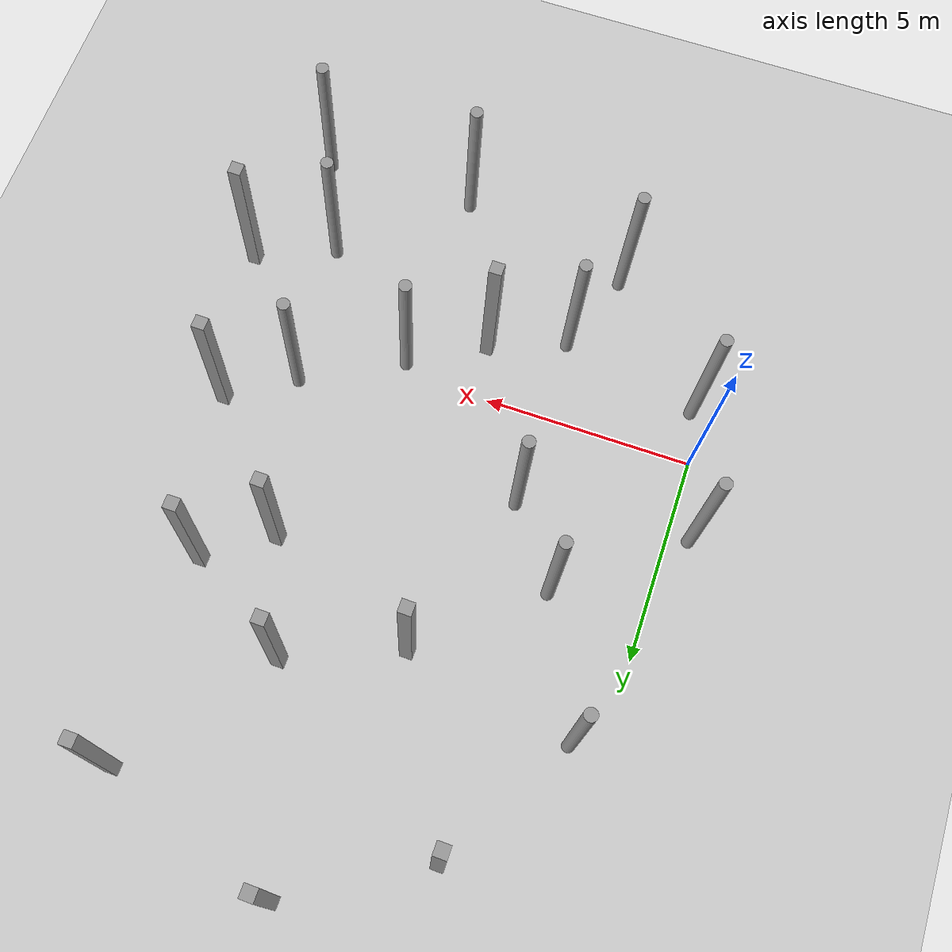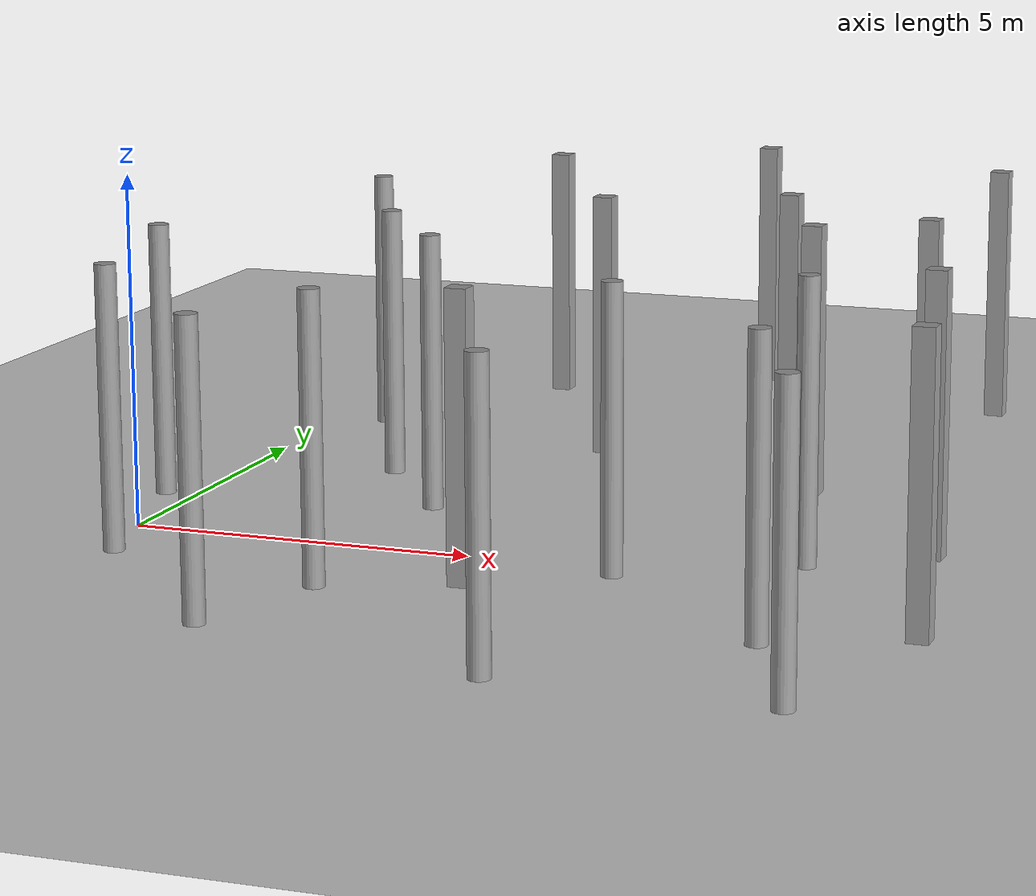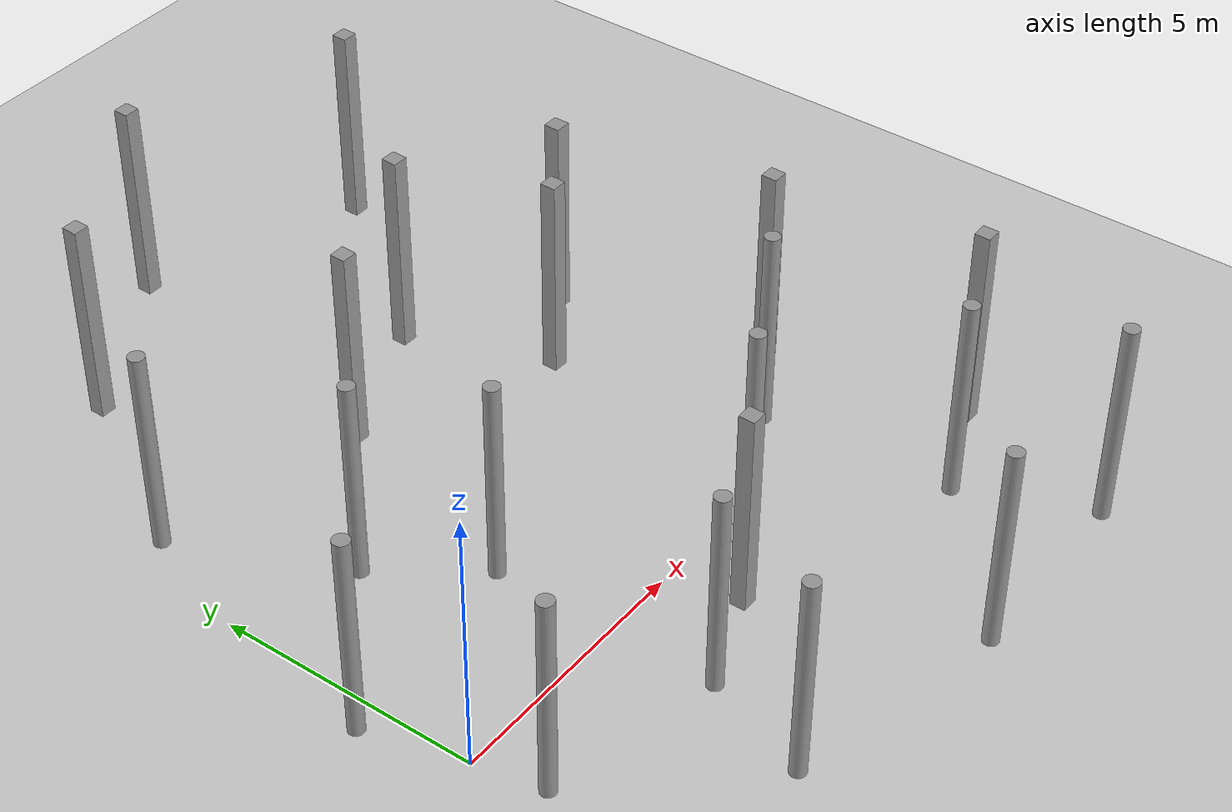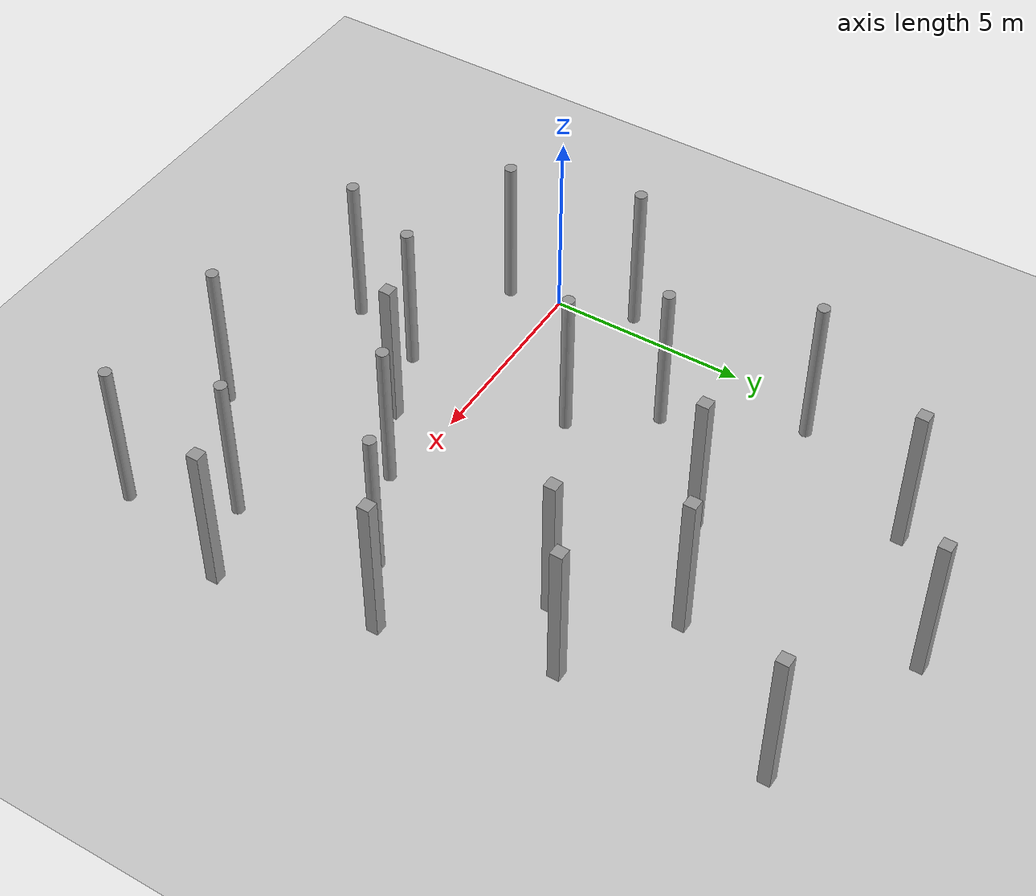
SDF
<sdf version="1.6">
 <world name="default">
  <model name="ground_plane">
   <static>1</static>
   <link name="link">
    <collision name="collision">
     <geometry><plane><normal>0 0 1</normal><size>100 100</size></plane></geometry>
    </collision>
    <visual name="visual">
     <cast_shadows>0</cast_shadows>
     <geometry><plane><normal>0 0 1</normal><size>100 100</size></plane></geometry>
     <material>
      <script><uri>file://media/materials/scripts/gazebo.material</uri><name>Gazebo/Gray</name></script>
     </material>
    </visual>
   </link>
  </model>
  <model name="unit_cylinder">
   <link name="link">
    <inertial>
     <mass>1000</mass>
     <inertia><ixx>145.833</ixx><ixy>0</ixy><ixz>0</ixz><iyy>145.833</iyy><iyz>0</iyz><izz>125</izz></inertia>
    </inertial>
    <visual name="visual">
     <geometry><cylinder><radius>0.15</radius><length>4</length></cylinder></geometry>
     <material>
      <script><name>Gazebo/Grey</name><uri>file://media/materials/scripts/gazebo.material</uri></script>
      <shader type="vertex"><normal_map>__default__</normal_map></shader>
      <ambient>0.3 0.3 0.3 1</ambient>
      <diffuse>0.7 0.7 0.7 1</diffuse>
      <specular>0.01 0.01 0.01 1</specular>
      <emissive>0 0 0 1</emissive>
     </material>
    </visual>
    <collision name="collision">
     <geometry><cylinder><radius>0.15</radius><length>4</length></cylinder></geometry>
     <surface>
      <friction>
       <ode><mu>1</mu><mu2>1</mu2><fdir1>0 0 0</fdir1><slip1>0</slip1><slip2>0</slip2></ode>
       <torsional>
        <coefficient>1</coefficient>
        <patch_radius>0</patch_radius>
        <surface_radius>0</surface_radius>
        <use_patch_radius>1</use_patch_radius>
        <ode><slip>0</slip></ode>
       </torsional>
      </friction>
      <bounce><restitution_coefficient>0</restitution_coefficient><threshold>1e+06</threshold></bounce>
      <contact>
       <collide_without_contact>0</collide_without_contact>
       <collide_without_contact_bitmask>1</collide_without_contact_bitmask>
       <collide_bitmask>1</collide_bitmask>
       <ode>
        <soft_cfm>0</soft_cfm>
        <soft_erp>0.2</soft_erp>
        <kp>1e+13</kp>
        <kd>1</kd>
        <max_vel>0.01</max_vel>
        <min_depth>0</min_depth>
       </ode>
       <bullet>
        <split_impulse>1</split_impulse>
        <split_impulse_penetration_threshold>-0.01</split_impulse_penetration_threshold>
        <soft_cfm>0</soft_cfm>
        <soft_erp>0.2</soft_erp>
        <kp>1e+13</kp>
        <kd>1</kd>
       </bullet>
      </contact>
     </surface>
    </collision>
   </link>
   <static>0</static>
   <pose>3.55793 2.3032 1.99998 -2e-06 -0 -0.203119</pose>
  </model>
  <model name="unit_cylinder_clone_3">
   <link name="link">
    <inertial>
     <mass>1000</mass>
     <inertia><ixx>145.833</ixx><ixy>0</ixy><ixz>0</ixz><iyy>145.833</iyy><iyz>0</iyz><izz>125</izz></inertia>
    </inertial>
    <visual name="visual">
     <geometry><cylinder><radius>0.15</radius><length>4</length></cylinder></geometry>
     <material>
      <script><name>Gazebo/Grey</name><uri>file://media/materials/scripts/gazebo.material</uri></script>
      <shader type="vertex"><normal_map>__default__</normal_map></shader>
      <ambient>0.3 0.3 0.3 1</ambient>
      <diffuse>0.7 0.7 0.7 1</diffuse>
      <specular>0.01 0.01 0.01 1</specular>
      <emissive>0 0 0 1</emissive>
     </material>
    </visual>
    <collision name="collision">
     <geometry><cylinder><radius>0.15</radius><length>4</length></cylinder></geometry>
     <surface>
      <friction>
       <ode><mu>1</mu><mu2>1</mu2><fdir1>0 0 0</fdir1><slip1>0</slip1><slip2>0</slip2></ode>
       <torsional>
        <coefficient>1</coefficient>
        <patch_radius>0</patch_radius>
        <surface_radius>0</surface_radius>
        <use_patch_radius>1</use_patch_radius>
        <ode><slip>0</slip></ode>
       </torsional>
      </friction>
      <bounce><restitution_coefficient>0</restitution_coefficient><threshold>1e+06</threshold></bounce>
      <contact>
       <collide_without_contact>0</collide_without_contact>
       <collide_without_contact_bitmask>1</collide_without_contact_bitmask>
       <collide_bitmask>1</collide_bitmask>
       <ode>
        <soft_cfm>0</soft_cfm>
        <soft_erp>0.2</soft_erp>
        <kp>1e+13</kp>
        <kd>1</kd>
        <max_vel>0.01</max_vel>
        <min_depth>0</min_depth>
       </ode>
       <bullet>
        <split_impulse>1</split_impulse>
        <split_impulse_penetration_threshold>-0.01</split_impulse_penetration_threshold>
        <soft_cfm>0</soft_cfm>
        <soft_erp>0.2</soft_erp>
        <kp>1e+13</kp>
        <kd>1</kd>
       </bullet>
      </contact>
     </surface>
    </collision>
   </link>
   <static>0</static>
   <pose>0.764147 7.25692 1.99998 -1e-06 1e-06 -0.195597</pose>
  </model>
  <model name="unit_cylinder_clone_0_clone">
   <link name="link">
    <inertial>
     <mass>1000</mass>
     <inertia><ixx>145.833</ixx><ixy>0</ixy><ixz>0</ixz><iyy>145.833</iyy><iyz>0</iyz><izz>125</izz></inertia>
    </inertial>
    <visual name="visual">
     <geometry><cylinder><radius>0.15</radius><length>4</length></cylinder></geometry>
     <material>
      <script><name>Gazebo/Grey</name><uri>file://media/materials/scripts/gazebo.material</uri></script>
      <shader type="vertex"><normal_map>__default__</normal_map></shader>
      <ambient>0.3 0.3 0.3 1</ambient>
      <diffuse>0.7 0.7 0.7 1</diffuse>
      <specular>0.01 0.01 0.01 1</specular>
      <emissive>0 0 0 1</emissive>
     </material>
    </visual>
    <collision name="collision">
     <geometry><cylinder><radius>0.15</radius><length>4</length></cylinder></geometry>
     <surface>
      <friction>
       <ode><mu>1</mu><mu2>1</mu2><fdir1>0 0 0</fdir1><slip1>0</slip1><slip2>0</slip2></ode>
       <torsional>
        <coefficient>1</coefficient>
        <patch_radius>0</patch_radius>
        <surface_radius>0</surface_radius>
        <use_patch_radius>1</use_patch_radius>
        <ode><slip>0</slip></ode>
       </torsional>
      </friction>
      <bounce><restitution_coefficient>0</restitution_coefficient><threshold>1e+06</threshold></bounce>
      <contact>
       <collide_without_contact>0</collide_without_contact>
       <collide_without_contact_bitmask>1</collide_without_contact_bitmask>
       <collide_bitmask>1</collide_bitmask>
       <ode>
        <soft_cfm>0</soft_cfm>
        <soft_erp>0.2</soft_erp>
        <kp>1e+13</kp>
        <kd>1</kd>
        <max_vel>0.01</max_vel>
        <min_depth>0</min_depth>
       </ode>
       <bullet>
        <split_impulse>1</split_impulse>
        <split_impulse_penetration_threshold>-0.01</split_impulse_penetration_threshold>
        <soft_cfm>0</soft_cfm>
        <soft_erp>0.2</soft_erp>
        <kp>1e+13</kp>
        <kd>1</kd>
       </bullet>
      </contact>
     </surface>
    </collision>
   </link>
   <static>0</static>
   <pose>10.8485 -4.989 1.99998 -1e-06 -0 -0.173285</pose>
  </model>
  <model name="unit_cylinder_clone_1_clone_8">
   <link name="link">
    <inertial>
     <mass>1000</mass>
     <inertia><ixx>145.833</ixx><ixy>0</ixy><ixz>0</ixz><iyy>145.833</iyy><iyz>0</iyz><izz>125</izz></inertia>
    </inertial>
    <visual name="visual">
     <geometry><cylinder><radius>0.15</radius><length>4</length></cylinder></geometry>
     <material>
      <script><name>Gazebo/Grey</name><uri>file://media/materials/scripts/gazebo.material</uri></script>
      <shader type="vertex"><normal_map>__default__</normal_map></shader>
      <ambient>0.3 0.3 0.3 1</ambient>
      <diffuse>0.7 0.7 0.7 1</diffuse>
      <specular>0.01 0.01 0.01 1</specular>
      <emissive>0 0 0 1</emissive>
     </material>
    </visual>
    <collision name="collision">
     <geometry><cylinder><radius>0.15</radius><length>4</length></cylinder></geometry>
     <surface>
      <friction>
       <ode><mu>1</mu><mu2>1</mu2><fdir1>0 0 0</fdir1><slip1>0</slip1><slip2>0</slip2></ode>
       <torsional>
        <coefficient>1</coefficient>
        <patch_radius>0</patch_radius>
        <surface_radius>0</surface_radius>
        <use_patch_radius>1</use_patch_radius>
        <ode><slip>0</slip></ode>
       </torsional>
      </friction>
      <bounce><restitution_coefficient>0</restitution_coefficient><threshold>1e+06</threshold></bounce>
      <contact>
       <collide_without_contact>0</collide_without_contact>
       <collide_without_contact_bitmask>1</collide_without_contact_bitmask>
       <collide_bitmask>1</collide_bitmask>
       <ode>
        <soft_cfm>0</soft_cfm>
        <soft_erp>0.2</soft_erp>
        <kp>1e+13</kp>
        <kd>1</kd>
        <max_vel>0.01</max_vel>
        <min_depth>0</min_depth>
       </ode>
       <bullet>
        <split_impulse>1</split_impulse>
        <split_impulse_penetration_threshold>-0.01</split_impulse_penetration_threshold>
        <soft_cfm>0</soft_cfm>
        <soft_erp>0.2</soft_erp>
        <kp>1e+13</kp>
        <kd>1</kd>
       </bullet>
      </contact>
     </surface>
    </collision>
   </link>
   <static>0</static>
   <pose>0.289102 -1.27862 1.99995 -0.000271 -2.8e-05 -0.897143</pose>
  </model>
  <model name="unit_cylinder_clone_1_clone_23">
   <link name="link">
    <inertial>
     <mass>1000</mass>
     <inertia><ixx>145.833</ixx><ixy>0</ixy><ixz>0</ixz><iyy>145.833</iyy><iyz>0</iyz><izz>125</izz></inertia>
    </inertial>
    <visual name="visual">
     <geometry><cylinder><radius>0.15</radius><length>4</length></cylinder></geometry>
     <material>
      <script><name>Gazebo/Grey</name><uri>file://media/materials/scripts/gazebo.material</uri></script>
      <shader type="vertex"><normal_map>__default__</normal_map></shader>
      <ambient>0.3 0.3 0.3 1</ambient>
      <diffuse>0.7 0.7 0.7 1</diffuse>
      <specular>0.01 0.01 0.01 1</specular>
      <emissive>0 0 0 1</emissive>
     </material>
    </visual>
    <collision name="collision">
     <geometry><cylinder><radius>0.15</radius><length>4</length></cylinder></geometry>
     <surface>
      <friction>
       <ode><mu>1</mu><mu2>1</mu2><fdir1>0 0 0</fdir1><slip1>0</slip1><slip2>0</slip2></ode>
       <torsional>
        <coefficient>1</coefficient>
        <patch_radius>0</patch_radius>
        <surface_radius>0</surface_radius>
        <use_patch_radius>1</use_patch_radius>
        <ode><slip>0</slip></ode>
       </torsional>
      </friction>
      <bounce><restitution_coefficient>0</restitution_coefficient><threshold>1e+06</threshold></bounce>
      <contact>
       <collide_without_contact>0</collide_without_contact>
       <collide_without_contact_bitmask>1</collide_without_contact_bitmask>
       <collide_bitmask>1</collide_bitmask>
       <ode>
        <soft_cfm>0</soft_cfm>
        <soft_erp>0.2</soft_erp>
        <kp>1e+13</kp>
        <kd>1</kd>
        <max_vel>0.01</max_vel>
        <min_depth>0</min_depth>
       </ode>
       <bullet>
        <split_impulse>1</split_impulse>
        <split_impulse_penetration_threshold>-0.01</split_impulse_penetration_threshold>
        <soft_cfm>0</soft_cfm>
        <soft_erp>0.2</soft_erp>
        <kp>1e+13</kp>
        <kd>1</kd>
       </bullet>
      </contact>
     </surface>
    </collision>
   </link>
   <static>0</static>
   <pose>7.09494 -5.00658 1.99998 -2e-06 -0 -0.353426</pose>
  </model>
  <model name="unit_cylinder_clone_1_clone_29">
   <link name="link">
    <inertial>
     <mass>1000</mass>
     <inertia><ixx>145.833</ixx><ixy>0</ixy><ixz>0</ixz><iyy>145.833</iyy><iyz>0</iyz><izz>125</izz></inertia>
    </inertial>
    <visual name="visual">
     <geometry><cylinder><radius>0.15</radius><length>4</length></cylinder></geometry>
     <material>
      <script><name>Gazebo/Grey</name><uri>file://media/materials/scripts/gazebo.material</uri></script>
      <shader type="vertex"><normal_map>__default__</normal_map></shader>
      <ambient>0.3 0.3 0.3 1</ambient>
      <diffuse>0.7 0.7 0.7 1</diffuse>
      <specular>0.01 0.01 0.01 1</specular>
      <emissive>0 0 0 1</emissive>
     </material>
    </visual>
    <collision name="collision">
     <geometry><cylinder><radius>0.15</radius><length>4</length></cylinder></geometry>
     <surface>
      <friction>
       <ode><mu>1</mu><mu2>1</mu2><fdir1>0 0 0</fdir1><slip1>0</slip1><slip2>0</slip2></ode>
       <torsional>
        <coefficient>1</coefficient>
        <patch_radius>0</patch_radius>
        <surface_radius>0</surface_radius>
        <use_patch_radius>1</use_patch_radius>
        <ode><slip>0</slip></ode>
       </torsional>
      </friction>
      <bounce><restitution_coefficient>0</restitution_coefficient><threshold>1e+06</threshold></bounce>
      <contact>
       <collide_without_contact>0</collide_without_contact>
       <collide_without_contact_bitmask>1</collide_without_contact_bitmask>
       <collide_bitmask>1</collide_bitmask>
       <ode>
        <soft_cfm>0</soft_cfm>
        <soft_erp>0.2</soft_erp>
        <kp>1e+13</kp>
        <kd>1</kd>
        <max_vel>0.01</max_vel>
        <min_depth>0</min_depth>
       </ode>
       <bullet>
        <split_impulse>1</split_impulse>
        <split_impulse_penetration_threshold>-0.01</split_impulse_penetration_threshold>
        <soft_cfm>0</soft_cfm>
        <soft_erp>0.2</soft_erp>
        <kp>1e+13</kp>
        <kd>1</kd>
       </bullet>
      </contact>
     </surface>
    </collision>
   </link>
   <static>0</static>
   <pose>9.84535 -2.62762 1.99995 -0.000271 -2.8e-05 -0.897836</pose>
  </model>
  <model name="unit_cylinder_clone_1_clone_7_clone">
   <link name="link">
    <inertial>
     <mass>1000</mass>
     <inertia><ixx>145.833</ixx><ixy>0</ixy><ixz>0</ixz><iyy>145.833</iyy><iyz>0</iyz><izz>125</izz></inertia>
    </inertial>
    <visual name="visual">
     <geometry><cylinder><radius>0.15</radius><length>4</length></cylinder></geometry>
     <material>
      <script><name>Gazebo/Grey</name><uri>file://media/materials/scripts/gazebo.material</uri></script>
      <shader type="vertex"><normal_map>__default__</normal_map></shader>
      <ambient>0.3 0.3 0.3 1</ambient>
      <diffuse>0.7 0.7 0.7 1</diffuse>
      <specular>0.01 0.01 0.01 1</specular>
      <emissive>0 0 0 1</emissive>
     </material>
    </visual>
    <collision name="collision">
     <geometry><cylinder><radius>0.15</radius><length>4</length></cylinder></geometry>
     <surface>
      <friction>
       <ode><mu>1</mu><mu2>1</mu2><fdir1>0 0 0</fdir1><slip1>0</slip1><slip2>0</slip2></ode>
       <torsional>
        <coefficient>1</coefficient>
        <patch_radius>0</patch_radius>
        <surface_radius>0</surface_radius>
        <use_patch_radius>1</use_patch_radius>
        <ode><slip>0</slip></ode>
       </torsional>
      </friction>
      <bounce><restitution_coefficient>0</restitution_coefficient><threshold>1e+06</threshold></bounce>
      <contact>
       <collide_without_contact>0</collide_without_contact>
       <collide_without_contact_bitmask>1</collide_without_contact_bitmask>
       <collide_bitmask>1</collide_bitmask>
       <ode>
        <soft_cfm>0</soft_cfm>
        <soft_erp>0.2</soft_erp>
        <kp>1e+13</kp>
        <kd>1</kd>
        <max_vel>0.01</max_vel>
        <min_depth>0</min_depth>
       </ode>
       <bullet>
        <split_impulse>1</split_impulse>
        <split_impulse_penetration_threshold>-0.01</split_impulse_penetration_threshold>
        <soft_cfm>0</soft_cfm>
        <soft_erp>0.2</soft_erp>
        <kp>1e+13</kp>
        <kd>1</kd>
       </bullet>
      </contact>
     </surface>
    </collision>
   </link>
   <static>0</static>
   <pose>2.2097 4.12392 1.99995 -0.000271 -2.8e-05 -0.898075</pose>
  </model>
  <model name="unit_cylinder_clone_1_clone_7_clone_9">
   <link name="link">
    <inertial>
     <mass>1000</mass>
     <inertia><ixx>145.833</ixx><ixy>0</ixy><ixz>0</ixz><iyy>145.833</iyy><iyz>0</iyz><izz>125</izz></inertia>
    </inertial>
    <visual name="visual">
     <geometry><cylinder><radius>0.15</radius><length>4</length></cylinder></geometry>
     <material>
      <script><name>Gazebo/Grey</name><uri>file://media/materials/scripts/gazebo.material</uri></script>
      <shader type="vertex"><normal_map>__default__</normal_map></shader>
      <ambient>0.3 0.3 0.3 1</ambient>
      <diffuse>0.7 0.7 0.7 1</diffuse>
      <specular>0.01 0.01 0.01 1</specular>
      <emissive>0 0 0 1</emissive>
     </material>
    </visual>
    <collision name="collision">
     <geometry><cylinder><radius>0.15</radius><length>4</length></cylinder></geometry>
     <surface>
      <friction>
       <ode><mu>1</mu><mu2>1</mu2><fdir1>0 0 0</fdir1><slip1>0</slip1><slip2>0</slip2></ode>
       <torsional>
        <coefficient>1</coefficient>
        <patch_radius>0</patch_radius>
        <surface_radius>0</surface_radius>
        <use_patch_radius>1</use_patch_radius>
        <ode><slip>0</slip></ode>
       </torsional>
      </friction>
      <bounce><restitution_coefficient>0</restitution_coefficient><threshold>1e+06</threshold></bounce>
      <contact>
       <collide_without_contact>0</collide_without_contact>
       <collide_without_contact_bitmask>1</collide_without_contact_bitmask>
       <collide_bitmask>1</collide_bitmask>
       <ode>
        <soft_cfm>0</soft_cfm>
        <soft_erp>0.2</soft_erp>
        <kp>1e+13</kp>
        <kd>1</kd>
        <max_vel>0.01</max_vel>
        <min_depth>0</min_depth>
       </ode>
       <bullet>
        <split_impulse>1</split_impulse>
        <split_impulse_penetration_threshold>-0.01</split_impulse_penetration_threshold>
        <soft_cfm>0</soft_cfm>
        <soft_erp>0.2</soft_erp>
        <kp>1e+13</kp>
        <kd>1</kd>
       </bullet>
      </contact>
     </surface>
    </collision>
   </link>
   <static>0</static>
   <pose>2.88076 -4.08069 1.99995 -0.000271 -2.7e-05 -0.893015</pose>
  </model>
  <model name="unit_cylinder_clone_1_clone_7_clone_10">
   <link name="link">
    <inertial>
     <mass>1000</mass>
     <inertia><ixx>145.833</ixx><ixy>0</ixy><ixz>0</ixz><iyy>145.833</iyy><iyz>0</iyz><izz>125</izz></inertia>
    </inertial>
    <visual name="visual">
     <geometry><cylinder><radius>0.15</radius><length>4</length></cylinder></geometry>
     <material>
      <script><name>Gazebo/Grey</name><uri>file://media/materials/scripts/gazebo.material</uri></script>
      <shader type="vertex"><normal_map>__default__</normal_map></shader>
      <ambient>0.3 0.3 0.3 1</ambient>
      <diffuse>0.7 0.7 0.7 1</diffuse>
      <specular>0.01 0.01 0.01 1</specular>
      <emissive>0 0 0 1</emissive>
     </material>
    </visual>
    <collision name="collision">
     <geometry><cylinder><radius>0.15</radius><length>4</length></cylinder></geometry>
     <surface>
      <friction>
       <ode><mu>1</mu><mu2>1</mu2><fdir1>0 0 0</fdir1><slip1>0</slip1><slip2>0</slip2></ode>
       <torsional>
        <coefficient>1</coefficient>
        <patch_radius>0</patch_radius>
        <surface_radius>0</surface_radius>
        <use_patch_radius>1</use_patch_radius>
        <ode><slip>0</slip></ode>
       </torsional>
      </friction>
      <bounce><restitution_coefficient>0</restitution_coefficient><threshold>1e+06</threshold></bounce>
      <contact>
       <collide_without_contact>0</collide_without_contact>
       <collide_without_contact_bitmask>1</collide_without_contact_bitmask>
       <collide_bitmask>1</collide_bitmask>
       <ode>
        <soft_cfm>0</soft_cfm>
        <soft_erp>0.2</soft_erp>
        <kp>1e+13</kp>
        <kd>1</kd>
        <max_vel>0.01</max_vel>
        <min_depth>0</min_depth>
       </ode>
       <bullet>
        <split_impulse>1</split_impulse>
        <split_impulse_penetration_threshold>-0.01</split_impulse_penetration_threshold>
        <soft_cfm>0</soft_cfm>
        <soft_erp>0.2</soft_erp>
        <kp>1e+13</kp>
        <kd>1</kd>
       </bullet>
      </contact>
     </surface>
    </collision>
   </link>
   <static>0</static>
   <pose>-0.499216 1.86491 1.99995 -0.000271 -2.7e-05 -0.891915</pose>
  </model>
  <model name="unit_cylinder_clone_10">
   <link name="link">
    <inertial>
     <mass>1000</mass>
     <inertia><ixx>145.833</ixx><ixy>0</ixy><ixz>0</ixz><iyy>145.833</iyy><iyz>0</iyz><izz>125</izz></inertia>
    </inertial>
    <visual name="visual">
     <geometry><cylinder><radius>0.15</radius><length>4</length></cylinder></geometry>
     <material>
      <script><name>Gazebo/Grey</name><uri>file://media/materials/scripts/gazebo.material</uri></script>
      <shader type="vertex"><normal_map>__default__</normal_map></shader>
      <ambient>0.3 0.3 0.3 1</ambient>
      <diffuse>0.7 0.7 0.7 1</diffuse>
      <specular>0.01 0.01 0.01 1</specular>
      <emissive>0 0 0 1</emissive>
     </material>
    </visual>
    <collision name="collision">
     <geometry><cylinder><radius>0.15</radius><length>4</length></cylinder></geometry>
     <surface>
      <friction>
       <ode><mu>1</mu><mu2>1</mu2><fdir1>0 0 0</fdir1><slip1>0</slip1><slip2>0</slip2></ode>
       <torsional>
        <coefficient>1</coefficient>
        <patch_radius>0</patch_radius>
        <surface_radius>0</surface_radius>
        <use_patch_radius>1</use_patch_radius>
        <ode><slip>0</slip></ode>
       </torsional>
      </friction>
      <bounce><restitution_coefficient>0</restitution_coefficient><threshold>1e+06</threshold></bounce>
      <contact>
       <collide_without_contact>0</collide_without_contact>
       <collide_without_contact_bitmask>1</collide_without_contact_bitmask>
       <collide_bitmask>1</collide_bitmask>
       <ode>
        <soft_cfm>0</soft_cfm>
        <soft_erp>0.2</soft_erp>
        <kp>1e+13</kp>
        <kd>1</kd>
        <max_vel>0.01</max_vel>
        <min_depth>0</min_depth>
       </ode>
       <bullet>
        <split_impulse>1</split_impulse>
        <split_impulse_penetration_threshold>-0.01</split_impulse_penetration_threshold>
        <soft_cfm>0</soft_cfm>
        <soft_erp>0.2</soft_erp>
        <kp>1e+13</kp>
        <kd>1</kd>
       </bullet>
      </contact>
     </surface>
    </collision>
   </link>
   <static>0</static>
   <pose>9.48047 1.00481 1.99998 -1e-06 1e-06 -0.19322</pose>
  </model>
  <model name="unit_cylinder_clone_11">
   <link name="link">
    <inertial>
     <mass>1000</mass>
     <inertia><ixx>145.833</ixx><ixy>0</ixy><ixz>0</ixz><iyy>145.833</iyy><iyz>0</iyz><izz>125</izz></inertia>
    </inertial>
    <visual name="visual">
     <geometry><cylinder><radius>0.15</radius><length>4</length></cylinder></geometry>
     <material>
      <script><name>Gazebo/Grey</name><uri>file://media/materials/scripts/gazebo.material</uri></script>
      <shader type="vertex"><normal_map>__default__</normal_map></shader>
      <ambient>0.3 0.3 0.3 1</ambient>
      <diffuse>0.7 0.7 0.7 1</diffuse>
      <specular>0.01 0.01 0.01 1</specular>
      <emissive>0 0 0 1</emissive>
     </material>
    </visual>
    <collision name="collision">
     <geometry><cylinder><radius>0.15</radius><length>4</length></cylinder></geometry>
     <surface>
      <friction>
       <ode><mu>1</mu><mu2>1</mu2><fdir1>0 0 0</fdir1><slip1>0</slip1><slip2>0</slip2></ode>
       <torsional>
        <coefficient>1</coefficient>
        <patch_radius>0</patch_radius>
        <surface_radius>0</surface_radius>
        <use_patch_radius>1</use_patch_radius>
        <ode><slip>0</slip></ode>
       </torsional>
      </friction>
      <bounce><restitution_coefficient>0</restitution_coefficient><threshold>1e+06</threshold></bounce>
      <contact>
       <collide_without_contact>0</collide_without_contact>
       <collide_without_contact_bitmask>1</collide_without_contact_bitmask>
       <collide_bitmask>1</collide_bitmask>
       <ode>
        <soft_cfm>0</soft_cfm>
        <soft_erp>0.2</soft_erp>
        <kp>1e+13</kp>
        <kd>1</kd>
        <max_vel>0.01</max_vel>
        <min_depth>0</min_depth>
       </ode>
       <bullet>
        <split_impulse>1</split_impulse>
        <split_impulse_penetration_threshold>-0.01</split_impulse_penetration_threshold>
        <soft_cfm>0</soft_cfm>
        <soft_erp>0.2</soft_erp>
        <kp>1e+13</kp>
        <kd>1</kd>
       </bullet>
      </contact>
     </surface>
    </collision>
   </link>
   <static>0</static>
   <pose>7.15955 -0.270157 1.99998 -2e-06 -0 -0.20108</pose>
  </model>
  <model name="unit_cylinder_clone_clone_2">
   <link name="link">
    <inertial>
     <mass>1000</mass>
     <inertia><ixx>145.833</ixx><ixy>0</ixy><ixz>0</ixz><iyy>145.833</iyy><iyz>0</iyz><izz>125</izz></inertia>
    </inertial>
    <visual name="visual">
     <geometry><cylinder><radius>0.15</radius><length>4</length></cylinder></geometry>
     <material>
      <script><name>Gazebo/Grey</name><uri>file://media/materials/scripts/gazebo.material</uri></script>
      <shader type="vertex"><normal_map>__default__</normal_map></shader>
      <ambient>0.3 0.3 0.3 1</ambient>
      <diffuse>0.7 0.7 0.7 1</diffuse>
      <specular>0.01 0.01 0.01 1</specular>
      <emissive>0 0 0 1</emissive>
     </material>
    </visual>
    <collision name="collision">
     <geometry><cylinder><radius>0.15</radius><length>4</length></cylinder></geometry>
     <surface>
      <friction>
       <ode><mu>1</mu><mu2>1</mu2><fdir1>0 0 0</fdir1><slip1>0</slip1><slip2>0</slip2></ode>
       <torsional>
        <coefficient>1</coefficient>
        <patch_radius>0</patch_radius>
        <surface_radius>0</surface_radius>
        <use_patch_radius>1</use_patch_radius>
        <ode><slip>0</slip></ode>
       </torsional>
      </friction>
      <bounce><restitution_coefficient>0</restitution_coefficient><threshold>1e+06</threshold></bounce>
      <contact>
       <collide_without_contact>0</collide_without_contact>
       <collide_without_contact_bitmask>1</collide_without_contact_bitmask>
       <collide_bitmask>1</collide_bitmask>
       <ode>
        <soft_cfm>0</soft_cfm>
        <soft_erp>0.2</soft_erp>
        <kp>1e+13</kp>
        <kd>1</kd>
        <max_vel>0.01</max_vel>
        <min_depth>0</min_depth>
       </ode>
       <bullet>
        <split_impulse>1</split_impulse>
        <split_impulse_penetration_threshold>-0.01</split_impulse_penetration_threshold>
        <soft_cfm>0</soft_cfm>
        <soft_erp>0.2</soft_erp>
        <kp>1e+13</kp>
        <kd>1</kd>
       </bullet>
      </contact>
     </surface>
    </collision>
   </link>
   <static>0</static>
   <pose>3.61628 -2.03021 1.99998 -2e-06 0 -0.187748</pose>
  </model>
  <model name="unit_box_clone_26_clone_2">
   <link name="link">
    <inertial>
     <mass>1000</mass>
     <inertia><ixx>166.667</ixx><ixy>0</ixy><ixz>0</ixz><iyy>166.667</iyy><iyz>0</iyz><izz>166.667</izz></inertia>
    </inertial>
    <visual name="visual">
     <geometry><box><size>0.3 0.3 4</size></box></geometry>
     <material>
      <script><name>Gazebo/Grey</name><uri>file://media/materials/scripts/gazebo.material</uri></script>
      <shader type="vertex"><normal_map>__default__</normal_map></shader>
      <ambient>0.3 0.3 0.3 1</ambient>
      <diffuse>0.7 0.7 0.7 1</diffuse>
      <specular>0.01 0.01 0.01 1</specular>
      <emissive>0 0 0 1</emissive>
     </material>
    </visual>
    <collision name="collision">
     <geometry><box><size>0.3 0.3 4</size></box></geometry>
     <surface>
      <friction>
       <ode><mu>1</mu><mu2>1</mu2><fdir1>0 0 0</fdir1><slip1>0</slip1><slip2>0</slip2></ode>
       <torsional>
        <coefficient>1</coefficient>
        <patch_radius>0</patch_radius>
        <surface_radius>0</surface_radius>
        <use_patch_radius>1</use_patch_radius>
        <ode><slip>0</slip></ode>
       </torsional>
      </friction>
      <bounce><restitution_coefficient>0</restitution_coefficient><threshold>1e+06</threshold></bounce>
      <contact>
       <collide_without_contact>0</collide_without_contact>
       <collide_without_contact_bitmask>1</collide_without_contact_bitmask>
       <collide_bitmask>1</collide_bitmask>
       <ode>
        <soft_cfm>0</soft_cfm>
        <soft_erp>0.2</soft_erp>
        <kp>1e+13</kp>
        <kd>1</kd>
        <max_vel>0.01</max_vel>
        <min_depth>0</min_depth>
       </ode>
       <bullet>
        <split_impulse>1</split_impulse>
        <split_impulse_penetration_threshold>-0.01</split_impulse_penetration_threshold>
        <soft_cfm>0</soft_cfm>
        <soft_erp>0.2</soft_erp>
        <kp>1e+13</kp>
        <kd>1</kd>
       </bullet>
      </contact>
     </surface>
    </collision>
   </link>
   <static>0</static>
   <pose>5.42189 -1.32656 2 -4e-06 3e-06 -0.000489</pose>
  </model>
  <model name="unit_box_clone_26_clone_5">
   <link name="link">
    <inertial>
     <mass>1000</mass>
     <inertia><ixx>166.667</ixx><ixy>0</ixy><ixz>0</ixz><iyy>166.667</iyy><iyz>0</iyz><izz>166.667</izz></inertia>
    </inertial>
    <visual name="visual">
     <geometry><box><size>0.3 0.3 4</size></box></geometry>
     <material>
      <script><name>Gazebo/Grey</name><uri>file://media/materials/scripts/gazebo.material</uri></script>
      <shader type="vertex"><normal_map>__default__</normal_map></shader>
      <ambient>0.3 0.3 0.3 1</ambient>
      <diffuse>0.7 0.7 0.7 1</diffuse>
      <specular>0.01 0.01 0.01 1</specular>
      <emissive>0 0 0 1</emissive>
     </material>
    </visual>
    <collision name="collision">
     <geometry><box><size>0.3 0.3 4</size></box></geometry>
     <surface>
      <friction>
       <ode><mu>1</mu><mu2>1</mu2><fdir1>0 0 0</fdir1><slip1>0</slip1><slip2>0</slip2></ode>
       <torsional>
        <coefficient>1</coefficient>
        <patch_radius>0</patch_radius>
        <surface_radius>0</surface_radius>
        <use_patch_radius>1</use_patch_radius>
        <ode><slip>0</slip></ode>
       </torsional>
      </friction>
      <bounce><restitution_coefficient>0</restitution_coefficient><threshold>1e+06</threshold></bounce>
      <contact>
       <collide_without_contact>0</collide_without_contact>
       <collide_without_contact_bitmask>1</collide_without_contact_bitmask>
       <collide_bitmask>1</collide_bitmask>
       <ode>
        <soft_cfm>0</soft_cfm>
        <soft_erp>0.2</soft_erp>
        <kp>1e+13</kp>
        <kd>1</kd>
        <max_vel>0.01</max_vel>
        <min_depth>0</min_depth>
       </ode>
       <bullet>
        <split_impulse>1</split_impulse>
        <split_impulse_penetration_threshold>-0.01</split_impulse_penetration_threshold>
        <soft_cfm>0</soft_cfm>
        <soft_erp>0.2</soft_erp>
        <kp>1e+13</kp>
        <kd>1</kd>
       </bullet>
      </contact>
     </surface>
    </collision>
   </link>
   <static>0</static>
   <pose>11.7154 -1.81909 2 -1e-06 -4e-06 -0.003405</pose>
  </model>
  <model name="unit_box_clone_22_clone">
   <link name="link">
    <inertial>
     <mass>1000</mass>
     <inertia><ixx>166.667</ixx><ixy>0</ixy><ixz>0</ixz><iyy>166.667</iyy><iyz>0</iyz><izz>166.667</izz></inertia>
    </inertial>
    <visual name="visual">
     <geometry><box><size>0.3 0.3 4</size></box></geometry>
     <material>
      <script><name>Gazebo/Grey</name><uri>file://media/materials/scripts/gazebo.material</uri></script>
      <shader type="vertex"><normal_map>__default__</normal_map></shader>
      <ambient>0.3 0.3 0.3 1</ambient>
      <diffuse>0.7 0.7 0.7 1</diffuse>
      <specular>0.01 0.01 0.01 1</specular>
      <emissive>0 0 0 1</emissive>
     </material>
    </visual>
    <collision name="collision">
     <geometry><box><size>0.3 0.3 4</size></box></geometry>
     <surface>
      <friction>
       <ode><mu>1</mu><mu2>1</mu2><fdir1>0 0 0</fdir1><slip1>0</slip1><slip2>0</slip2></ode>
       <torsional>
        <coefficient>1</coefficient>
        <patch_radius>0</patch_radius>
        <surface_radius>0</surface_radius>
        <use_patch_radius>1</use_patch_radius>
        <ode><slip>0</slip></ode>
       </torsional>
      </friction>
      <bounce><restitution_coefficient>0</restitution_coefficient><threshold>1e+06</threshold></bounce>
      <contact>
       <collide_without_contact>0</collide_without_contact>
       <collide_without_contact_bitmask>1</collide_without_contact_bitmask>
       <collide_bitmask>1</collide_bitmask>
       <ode>
        <soft_cfm>0</soft_cfm>
        <soft_erp>0.2</soft_erp>
        <kp>1e+13</kp>
        <kd>1</kd>
        <max_vel>0.01</max_vel>
        <min_depth>0</min_depth>
       </ode>
       <bullet>
        <split_impulse>1</split_impulse>
        <split_impulse_penetration_threshold>-0.01</split_impulse_penetration_threshold>
        <soft_cfm>0</soft_cfm>
        <soft_erp>0.2</soft_erp>
        <kp>1e+13</kp>
        <kd>1</kd>
       </bullet>
      </contact>
     </surface>
    </collision>
   </link>
   <static>0</static>
   <pose>2.64301 10.536 2 3e-06 -4e-06 -0.015024</pose>
  </model>
  <model name="unit_box_clone_22_clone_0">
   <link name="link">
    <inertial>
     <mass>1000</mass>
     <inertia><ixx>166.667</ixx><ixy>0</ixy><ixz>0</ixz><iyy>166.667</iyy><iyz>0</iyz><izz>166.667</izz></inertia>
    </inertial>
    <visual name="visual">
     <geometry><box><size>0.3 0.3 4</size></box></geometry>
     <material>
      <script><name>Gazebo/Grey</name><uri>file://media/materials/scripts/gazebo.material</uri></script>
      <shader type="vertex"><normal_map>__default__</normal_map></shader>
      <ambient>0.3 0.3 0.3 1</ambient>
      <diffuse>0.7 0.7 0.7 1</diffuse>
      <specular>0.01 0.01 0.01 1</specular>
      <emissive>0 0 0 1</emissive>
     </material>
    </visual>
    <collision name="collision">
     <geometry><box><size>0.3 0.3 4</size></box></geometry>
     <surface>
      <friction>
       <ode><mu>1</mu><mu2>1</mu2><fdir1>0 0 0</fdir1><slip1>0</slip1><slip2>0</slip2></ode>
       <torsional>
        <coefficient>1</coefficient>
        <patch_radius>0</patch_radius>
        <surface_radius>0</surface_radius>
        <use_patch_radius>1</use_patch_radius>
        <ode><slip>0</slip></ode>
       </torsional>
      </friction>
      <bounce><restitution_coefficient>0</restitution_coefficient><threshold>1e+06</threshold></bounce>
      <contact>
       <collide_without_contact>0</collide_without_contact>
       <collide_without_contact_bitmask>1</collide_without_contact_bitmask>
       <collide_bitmask>1</collide_bitmask>
       <ode>
        <soft_cfm>0</soft_cfm>
        <soft_erp>0.2</soft_erp>
        <kp>1e+13</kp>
        <kd>1</kd>
        <max_vel>0.01</max_vel>
        <min_depth>0</min_depth>
       </ode>
       <bullet>
        <split_impulse>1</split_impulse>
        <split_impulse_penetration_threshold>-0.01</split_impulse_penetration_threshold>
        <soft_cfm>0</soft_cfm>
        <soft_erp>0.2</soft_erp>
        <kp>1e+13</kp>
        <kd>1</kd>
       </bullet>
      </contact>
     </surface>
    </collision>
   </link>
   <static>0</static>
   <pose>9.97929 10.9457 2 -2e-06 -0 -0.014309</pose>
  </model>
  <model name="unit_box_clone_22_clone_2">
   <link name="link">
    <inertial>
     <mass>1000</mass>
     <inertia><ixx>166.667</ixx><ixy>0</ixy><ixz>0</ixz><iyy>166.667</iyy><iyz>0</iyz><izz>166.667</izz></inertia>
    </inertial>
    <visual name="visual">
     <geometry><box><size>0.3 0.3 4</size></box></geometry>
     <material>
      <script><name>Gazebo/Grey</name><uri>file://media/materials/scripts/gazebo.material</uri></script>
      <shader type="vertex"><normal_map>__default__</normal_map></shader>
      <ambient>0.3 0.3 0.3 1</ambient>
      <diffuse>0.7 0.7 0.7 1</diffuse>
      <specular>0.01 0.01 0.01 1</specular>
      <emissive>0 0 0 1</emissive>
     </material>
    </visual>
    <collision name="collision">
     <geometry><box><size>0.3 0.3 4</size></box></geometry>
     <surface>
      <friction>
       <ode><mu>1</mu><mu2>1</mu2><fdir1>0 0 0</fdir1><slip1>0</slip1><slip2>0</slip2></ode>
       <torsional>
        <coefficient>1</coefficient>
        <patch_radius>0</patch_radius>
        <surface_radius>0</surface_radius>
        <use_patch_radius>1</use_patch_radius>
        <ode><slip>0</slip></ode>
       </torsional>
      </friction>
      <bounce><restitution_coefficient>0</restitution_coefficient><threshold>1e+06</threshold></bounce>
      <contact>
       <collide_without_contact>0</collide_without_contact>
       <collide_without_contact_bitmask>1</collide_without_contact_bitmask>
       <collide_bitmask>1</collide_bitmask>
       <ode>
        <soft_cfm>0</soft_cfm>
        <soft_erp>0.2</soft_erp>
        <kp>1e+13</kp>
        <kd>1</kd>
        <max_vel>0.01</max_vel>
        <min_depth>0</min_depth>
       </ode>
       <bullet>
        <split_impulse>1</split_impulse>
        <split_impulse_penetration_threshold>-0.01</split_impulse_penetration_threshold>
        <soft_cfm>0</soft_cfm>
        <soft_erp>0.2</soft_erp>
        <kp>1e+13</kp>
        <kd>1</kd>
       </bullet>
      </contact>
     </surface>
    </collision>
   </link>
   <static>0</static>
   <pose>8.49659 4.89873 2 5e-06 4e-06 -0.016245</pose>
  </model>
  <model name="unit_box_clone_22_clone_3">
   <link name="link">
    <inertial>
     <mass>1000</mass>
     <inertia><ixx>166.667</ixx><ixy>0</ixy><ixz>0</ixz><iyy>166.667</iyy><iyz>0</iyz><izz>166.667</izz></inertia>
    </inertial>
    <visual name="visual">
     <geometry><box><size>0.3 0.3 4</size></box></geometry>
     <material>
      <script><name>Gazebo/Grey</name><uri>file://media/materials/scripts/gazebo.material</uri></script>
      <shader type="vertex"><normal_map>__default__</normal_map></shader>
      <ambient>0.3 0.3 0.3 1</ambient>
      <diffuse>0.7 0.7 0.7 1</diffuse>
      <specular>0.01 0.01 0.01 1</specular>
      <emissive>0 0 0 1</emissive>
     </material>
    </visual>
    <collision name="collision">
     <geometry><box><size>0.3 0.3 4</size></box></geometry>
     <surface>
      <friction>
       <ode><mu>1</mu><mu2>1</mu2><fdir1>0 0 0</fdir1><slip1>0</slip1><slip2>0</slip2></ode>
       <torsional>
        <coefficient>1</coefficient>
        <patch_radius>0</patch_radius>
        <surface_radius>0</surface_radius>
        <use_patch_radius>1</use_patch_radius>
        <ode><slip>0</slip></ode>
       </torsional>
      </friction>
      <bounce><restitution_coefficient>0</restitution_coefficient><threshold>1e+06</threshold></bounce>
      <contact>
       <collide_without_contact>0</collide_without_contact>
       <collide_without_contact_bitmask>1</collide_without_contact_bitmask>
       <collide_bitmask>1</collide_bitmask>
       <ode>
        <soft_cfm>0</soft_cfm>
        <soft_erp>0.2</soft_erp>
        <kp>1e+13</kp>
        <kd>1</kd>
        <max_vel>0.01</max_vel>
        <min_depth>0</min_depth>
       </ode>
       <bullet>
        <split_impulse>1</split_impulse>
        <split_impulse_penetration_threshold>-0.01</split_impulse_penetration_threshold>
        <soft_cfm>0</soft_cfm>
        <soft_erp>0.2</soft_erp>
        <kp>1e+13</kp>
        <kd>1</kd>
       </bullet>
      </contact>
     </surface>
    </collision>
   </link>
   <static>0</static>
   <pose>5.72134 12.395 2 0 0 -0.013477</pose>
  </model>
  <model name="unit_box_clone_22_clone_4">
   <link name="link">
    <inertial>
     <mass>1000</mass>
     <inertia><ixx>166.667</ixx><ixy>0</ixy><ixz>0</ixz><iyy>166.667</iyy><iyz>0</iyz><izz>166.667</izz></inertia>
    </inertial>
    <visual name="visual">
     <geometry><box><size>0.3 0.3 4</size></box></geometry>
     <material>
      <script><name>Gazebo/Grey</name><uri>file://media/materials/scripts/gazebo.material</uri></script>
      <shader type="vertex"><normal_map>__default__</normal_map></shader>
      <ambient>0.3 0.3 0.3 1</ambient>
      <diffuse>0.7 0.7 0.7 1</diffuse>
      <specular>0.01 0.01 0.01 1</specular>
      <emissive>0 0 0 1</emissive>
     </material>
    </visual>
    <collision name="collision">
     <geometry><box><size>0.3 0.3 4</size></box></geometry>
     <surface>
      <friction>
       <ode><mu>1</mu><mu2>1</mu2><fdir1>0 0 0</fdir1><slip1>0</slip1><slip2>0</slip2></ode>
       <torsional>
        <coefficient>1</coefficient>
        <patch_radius>0</patch_radius>
        <surface_radius>0</surface_radius>
        <use_patch_radius>1</use_patch_radius>
        <ode><slip>0</slip></ode>
       </torsional>
      </friction>
      <bounce><restitution_coefficient>0</restitution_coefficient><threshold>1e+06</threshold></bounce>
      <contact>
       <collide_without_contact>0</collide_without_contact>
       <collide_without_contact_bitmask>1</collide_without_contact_bitmask>
       <collide_bitmask>1</collide_bitmask>
       <ode>
        <soft_cfm>0</soft_cfm>
        <soft_erp>0.2</soft_erp>
        <kp>1e+13</kp>
        <kd>1</kd>
        <max_vel>0.01</max_vel>
        <min_depth>0</min_depth>
       </ode>
       <bullet>
        <split_impulse>1</split_impulse>
        <split_impulse_penetration_threshold>-0.01</split_impulse_penetration_threshold>
        <soft_cfm>0</soft_cfm>
        <soft_erp>0.2</soft_erp>
        <kp>1e+13</kp>
        <kd>1</kd>
       </bullet>
      </contact>
     </surface>
    </collision>
   </link>
   <static>0</static>
   <pose>9.97945 5.95188 2 6e-06 -4e-06 -0.009894</pose>
  </model>
  <model name="unit_box_clone_22_clone_5">
   <link name="link">
    <inertial>
     <mass>1000</mass>
     <inertia><ixx>166.667</ixx><ixy>0</ixy><ixz>0</ixz><iyy>166.667</iyy><iyz>0</iyz><izz>166.667</izz></inertia>
    </inertial>
    <visual name="visual">
     <geometry><box><size>0.3 0.3 4</size></box></geometry>
     <material>
      <script><name>Gazebo/Grey</name><uri>file://media/materials/scripts/gazebo.material</uri></script>
      <shader type="vertex"><normal_map>__default__</normal_map></shader>
      <ambient>0.3 0.3 0.3 1</ambient>
      <diffuse>0.7 0.7 0.7 1</diffuse>
      <specular>0.01 0.01 0.01 1</specular>
      <emissive>0 0 0 1</emissive>
     </material>
    </visual>
    <collision name="collision">
     <geometry><box><size>0.3 0.3 4</size></box></geometry>
     <surface>
      <friction>
       <ode><mu>1</mu><mu2>1</mu2><fdir1>0 0 0</fdir1><slip1>0</slip1><slip2>0</slip2></ode>
       <torsional>
        <coefficient>1</coefficient>
        <patch_radius>0</patch_radius>
        <surface_radius>0</surface_radius>
        <use_patch_radius>1</use_patch_radius>
        <ode><slip>0</slip></ode>
       </torsional>
      </friction>
      <bounce><restitution_coefficient>0</restitution_coefficient><threshold>1e+06</threshold></bounce>
      <contact>
       <collide_without_contact>0</collide_without_contact>
       <collide_without_contact_bitmask>1</collide_without_contact_bitmask>
       <collide_bitmask>1</collide_bitmask>
       <ode>
        <soft_cfm>0</soft_cfm>
        <soft_erp>0.2</soft_erp>
        <kp>1e+13</kp>
        <kd>1</kd>
        <max_vel>0.01</max_vel>
        <min_depth>0</min_depth>
       </ode>
       <bullet>
        <split_impulse>1</split_impulse>
        <split_impulse_penetration_threshold>-0.01</split_impulse_penetration_threshold>
        <soft_cfm>0</soft_cfm>
        <soft_erp>0.2</soft_erp>
        <kp>1e+13</kp>
        <kd>1</kd>
       </bullet>
      </contact>
     </surface>
    </collision>
   </link>
   <static>0</static>
   <pose>7.42364 7.56363 2.00001 1e-05 -8.5e-05 -0.016979</pose>
  </model>
  <model name="unit_box_clone_22_clone_6">
   <link name="link">
    <inertial>
     <mass>1000</mass>
     <inertia><ixx>166.667</ixx><ixy>0</ixy><ixz>0</ixz><iyy>166.667</iyy><iyz>0</iyz><izz>166.667</izz></inertia>
    </inertial>
    <visual name="visual">
     <geometry><box><size>0.3 0.3 4</size></box></geometry>
     <material>
      <script><name>Gazebo/Grey</name><uri>file://media/materials/scripts/gazebo.material</uri></script>
      <shader type="vertex"><normal_map>__default__</normal_map></shader>
      <ambient>0.3 0.3 0.3 1</ambient>
      <diffuse>0.7 0.7 0.7 1</diffuse>
      <specular>0.01 0.01 0.01 1</specular>
      <emissive>0 0 0 1</emissive>
     </material>
    </visual>
    <collision name="collision">
     <geometry><box><size>0.3 0.3 4</size></box></geometry>
     <surface>
      <friction>
       <ode><mu>1</mu><mu2>1</mu2><fdir1>0 0 0</fdir1><slip1>0</slip1><slip2>0</slip2></ode>
       <torsional>
        <coefficient>1</coefficient>
        <patch_radius>0</patch_radius>
        <surface_radius>0</surface_radius>
        <use_patch_radius>1</use_patch_radius>
        <ode><slip>0</slip></ode>
       </torsional>
      </friction>
      <bounce><restitution_coefficient>0</restitution_coefficient><threshold>1e+06</threshold></bounce>
      <contact>
       <collide_without_contact>0</collide_without_contact>
       <collide_without_contact_bitmask>1</collide_without_contact_bitmask>
       <collide_bitmask>1</collide_bitmask>
       <ode>
        <soft_cfm>0</soft_cfm>
        <soft_erp>0.2</soft_erp>
        <kp>1e+13</kp>
        <kd>1</kd>
        <max_vel>0.01</max_vel>
        <min_depth>0</min_depth>
       </ode>
       <bullet>
        <split_impulse>1</split_impulse>
        <split_impulse_penetration_threshold>-0.01</split_impulse_penetration_threshold>
        <soft_cfm>0</soft_cfm>
        <soft_erp>0.2</soft_erp>
        <kp>1e+13</kp>
        <kd>1</kd>
       </bullet>
      </contact>
     </surface>
    </collision>
   </link>
   <static>0</static>
   <pose>11 2.00002 2 -0 4e-06 -0.013464</pose>
  </model>
  <model name="unit_box_clone_22_clone_9">
   <link name="link">
    <inertial>
     <mass>1000</mass>
     <inertia><ixx>166.667</ixx><ixy>0</ixy><ixz>0</ixz><iyy>166.667</iyy><iyz>0</iyz><izz>166.667</izz></inertia>
    </inertial>
    <visual name="visual">
     <geometry><box><size>0.3 0.3 4</size></box></geometry>
     <material>
      <script><name>Gazebo/Grey</name><uri>file://media/materials/scripts/gazebo.material</uri></script>
      <shader type="vertex"><normal_map>__default__</normal_map></shader>
      <ambient>0.3 0.3 0.3 1</ambient>
      <diffuse>0.7 0.7 0.7 1</diffuse>
      <specular>0.01 0.01 0.01 1</specular>
      <emissive>0 0 0 1</emissive>
     </material>
    </visual>
    <collision name="collision">
     <geometry><box><size>0.3 0.3 4</size></box></geometry>
     <surface>
      <friction>
       <ode><mu>1</mu><mu2>1</mu2><fdir1>0 0 0</fdir1><slip1>0</slip1><slip2>0</slip2></ode>
       <torsional>
        <coefficient>1</coefficient>
        <patch_radius>0</patch_radius>
        <surface_radius>0</surface_radius>
        <use_patch_radius>1</use_patch_radius>
        <ode><slip>0</slip></ode>
       </torsional>
      </friction>
      <bounce><restitution_coefficient>0</restitution_coefficient><threshold>1e+06</threshold></bounce>
      <contact>
       <collide_without_contact>0</collide_without_contact>
       <collide_without_contact_bitmask>1</collide_without_contact_bitmask>
       <collide_bitmask>1</collide_bitmask>
       <ode>
        <soft_cfm>0</soft_cfm>
        <soft_erp>0.2</soft_erp>
        <kp>1e+13</kp>
        <kd>1</kd>
        <max_vel>0.01</max_vel>
        <min_depth>0</min_depth>
       </ode>
       <bullet>
        <split_impulse>1</split_impulse>
        <split_impulse_penetration_threshold>-0.01</split_impulse_penetration_threshold>
        <soft_cfm>0</soft_cfm>
        <soft_erp>0.2</soft_erp>
        <kp>1e+13</kp>
        <kd>1</kd>
       </bullet>
      </contact>
     </surface>
    </collision>
   </link>
   <static>0</static>
   <pose>4.7765 6.43176 2 -2e-06 -0 -0.01294</pose>
  </model>
 </world>
</sdf>
